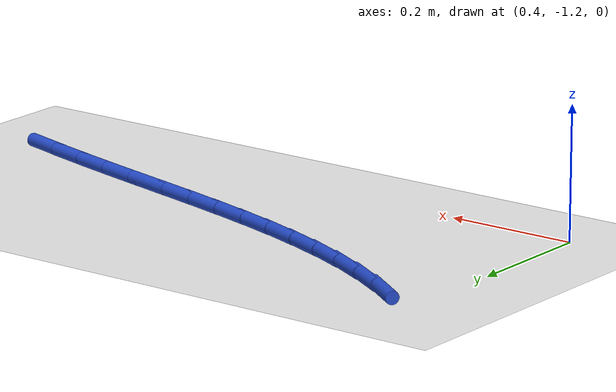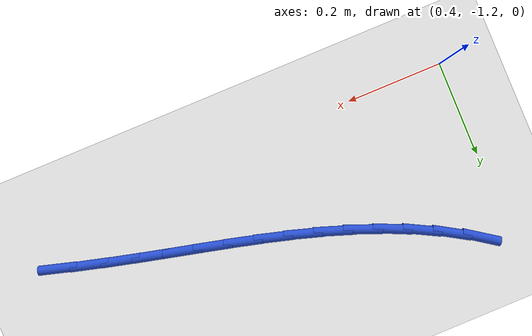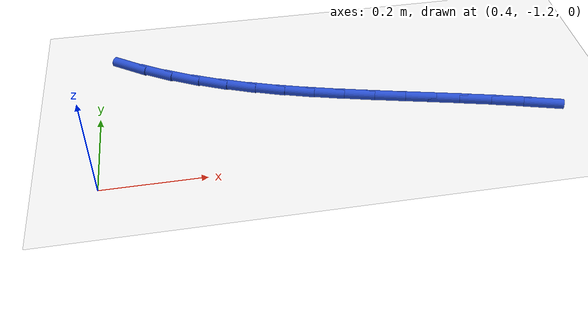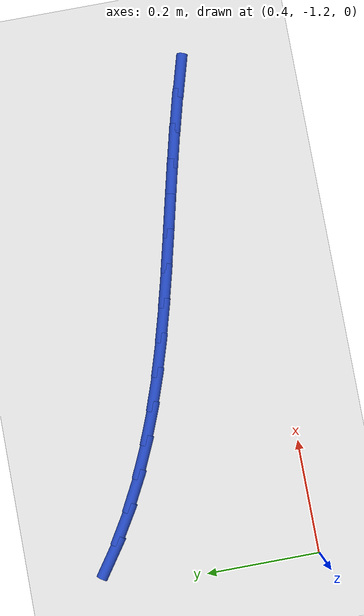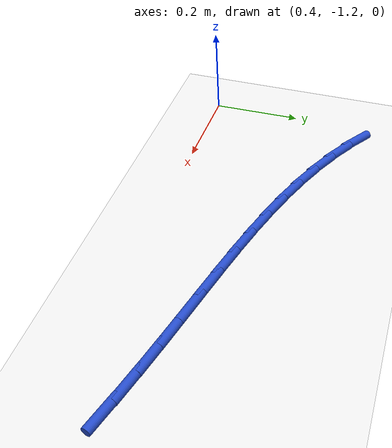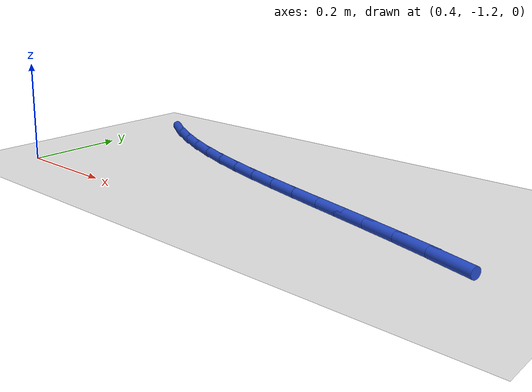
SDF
<sdf version="1.6">
 <world name="default">
  <model name="ground_plane">
   <static>1</static>
   <link name="link">
    <collision name="collision">
     <geometry><plane><normal>0 0 1</normal><size>100 100</size></plane></geometry>
     <surface><friction><ode><mu>100</mu><mu2>50</mu2></ode></friction></surface>
    </collision>
    <visual name="visual">
     <cast_shadows>0</cast_shadows>
     <geometry><plane><normal>0 0 1</normal><size>100 100</size></plane></geometry>
     <material>
      <script><uri>file://media/materials/scripts/gazebo.material</uri><name>Gazebo/WhiteGlow</name></script>
     </material>
    </visual>
   </link>
  </model>
  <model name="line">
   <link name="link_90">
    <pose>1.27815110109412 -1.1131284801190258 0.01 0 1.57 -0.27883157748176374</pose>
    <collision name="collision">
     <geometry><cylinder><radius>0.01</radius><length>0.08</length></cylinder></geometry>
    </collision>
    <visual name="visual">
     <material>
      <script><name>Gazebo/Blue</name><uri>file://media/materials/scripts/gazebo.material</uri></script>
     </material>
     <geometry><cylinder><radius>0.01</radius><length>0.08</length></cylinder></geometry>
    </visual>
   </link>
   <link name="link_91">
    <pose>1.216161551930985 -1.0953815098420938 0.01 0 1.57 -0.2585443103683471</pose>
    <collision name="collision">
     <geometry><cylinder><radius>0.01</radius><length>0.08</length></cylinder></geometry>
    </collision>
    <visual name="visual">
     <material>
      <script><name>Gazebo/Blue</name><uri>file://media/materials/scripts/gazebo.material</uri></script>
     </material>
     <geometry><cylinder><radius>0.01</radius><length>0.08</length></cylinder></geometry>
    </visual>
   </link>
   <link name="link_92">
    <pose>1.1543096458623636 -1.07902394206051 0.01 0 1.57 -0.244625452349905</pose>
    <collision name="collision">
     <geometry><cylinder><radius>0.01</radius><length>0.08</length></cylinder></geometry>
    </collision>
    <visual name="visual">
     <material>
      <script><name>Gazebo/Blue</name><uri>file://media/materials/scripts/gazebo.material</uri></script>
     </material>
     <geometry><cylinder><radius>0.01</radius><length>0.08</length></cylinder></geometry>
    </visual>
   </link>
   <link name="link_93">
    <pose>1.0926971797090914 -1.0636439458053006 0.01 0 1.57 -0.2372288643275581</pose>
    <collision name="collision">
     <geometry><cylinder><radius>0.01</radius><length>0.08</length></cylinder></geometry>
    </collision>
    <visual name="visual">
     <material>
      <script><name>Gazebo/Blue</name><uri>file://media/materials/scripts/gazebo.material</uri></script>
     </material>
     <geometry><cylinder><radius>0.01</radius><length>0.08</length></cylinder></geometry>
    </visual>
   </link>
   <link name="link_94">
    <pose>1.031425950292007 -1.0488296901074936 0.01 0 1.57 -0.23650197003550158</pose>
    <collision name="collision">
     <geometry><cylinder><radius>0.01</radius><length>0.08</length></cylinder></geometry>
    </collision>
    <visual name="visual">
     <material>
      <script><name>Gazebo/Blue</name><uri>file://media/materials/scripts/gazebo.material</uri></script>
     </material>
     <geometry><cylinder><radius>0.01</radius><length>0.08</length></cylinder></geometry>
    </visual>
   </link>
   <link name="link_95">
    <pose>0.9705977544319452 -1.0341693439981152 0.01 0 1.57 -0.24259518238177613</pose>
    <collision name="collision">
     <geometry><cylinder><radius>0.01</radius><length>0.08</length></cylinder></geometry>
    </collision>
    <visual name="visual">
     <material>
      <script><name>Gazebo/Blue</name><uri>file://media/materials/scripts/gazebo.material</uri></script>
     </material>
     <geometry><cylinder><radius>0.01</radius><length>0.08</length></cylinder></geometry>
    </visual>
   </link>
   <link name="link_96">
    <pose>0.9103143889497423 -1.0192510765081917 0.01 0 1.57 -0.2556628980449137</pose>
    <collision name="collision">
     <geometry><cylinder><radius>0.01</radius><length>0.08</length></cylinder></geometry>
    </collision>
    <visual name="visual">
     <material>
      <script><name>Gazebo/Blue</name><uri>file://media/materials/scripts/gazebo.material</uri></script>
     </material>
     <geometry><cylinder><radius>0.01</radius><length>0.08</length></cylinder></geometry>
    </visual>
   </link>
   <link name="link_97">
    <pose>0.8506776506662364 -1.0036630566687508 0.01 0 1.57 -0.2758546222119745</pose>
    <collision name="collision">
     <geometry><cylinder><radius>0.01</radius><length>0.08</length></cylinder></geometry>
    </collision>
    <visual name="visual">
     <material>
      <script><name>Gazebo/Blue</name><uri>file://media/materials/scripts/gazebo.material</uri></script>
     </material>
     <geometry><cylinder><radius>0.01</radius><length>0.08</length></cylinder></geometry>
    </visual>
   </link>
   <link name="link_98">
    <pose>0.7917893364022632 -0.986993453510819 0.01 0 1.57 -0.30329471917933365</pose>
    <collision name="collision">
     <geometry><cylinder><radius>0.01</radius><length>0.08</length></cylinder></geometry>
    </collision>
    <visual name="visual">
     <material>
      <script><name>Gazebo/Blue</name><uri>file://media/materials/scripts/gazebo.material</uri></script>
     </material>
     <geometry><cylinder><radius>0.01</radius><length>0.08</length></cylinder></geometry>
    </visual>
   </link>
   <link name="link_99">
    <pose>0.7337512429786597 -0.9688304360654232 0.01 0 1.57 -0.3380495842262577</pose>
    <collision name="collision">
     <geometry><cylinder><radius>0.01</radius><length>0.08</length></cylinder></geometry>
    </collision>
    <visual name="visual">
     <material>
      <script><name>Gazebo/Blue</name><uri>file://media/materials/scripts/gazebo.material</uri></script>
     </material>
     <geometry><cylinder><radius>0.01</radius><length>0.08</length></cylinder></geometry>
    </visual>
   </link>
   <link name="link_100">
    <pose>0.676665167216261 -0.94876217336359 0.01 0 1.57 -0.3800822024453398</pose>
    <collision name="collision">
     <geometry><cylinder><radius>0.01</radius><length>0.08</length></cylinder></geometry>
    </collision>
    <visual name="visual">
     <material>
      <script><name>Gazebo/Blue</name><uri>file://media/materials/scripts/gazebo.material</uri></script>
     </material>
     <geometry><cylinder><radius>0.01</radius><length>0.08</length></cylinder></geometry>
    </visual>
   </link>
   <link name="link_101">
    <pose>0.6206329059359059 -0.9263768344363468 0.01 0 1.57 -0.4291966324349691</pose>
    <collision name="collision">
     <geometry><cylinder><radius>0.01</radius><length>0.08</length></cylinder></geometry>
    </collision>
    <visual name="visual">
     <material>
      <script><name>Gazebo/Blue</name><uri>file://media/materials/scripts/gazebo.material</uri></script>
     </material>
     <geometry><cylinder><radius>0.01</radius><length>0.08</length></cylinder></geometry>
    </visual>
   </link>
   <link name="link_102">
    <pose>0.5657562559584297 -0.9012625883147197 0.01 0 1.57 -0.4849791778529279</pose>
    <collision name="collision">
     <geometry><cylinder><radius>0.01</radius><length>0.08</length></cylinder></geometry>
    </collision>
    <visual name="visual">
     <material>
      <script><name>Gazebo/Blue</name><uri>file://media/materials/scripts/gazebo.material</uri></script>
     </material>
     <geometry><cylinder><radius>0.01</radius><length>0.08</length></cylinder></geometry>
    </visual>
   </link>
   <link name="link_103">
    <pose>0.5121370141046693 -0.8730076040297363 0.01 0 1.57 -0.5462002851927259</pose>
    <collision name="collision">
     <geometry><cylinder><radius>0.01</radius><length>0.08</length></cylinder></geometry>
    </collision>
    <visual name="visual">
     <material>
      <script><name>Gazebo/Blue</name><uri>file://media/materials/scripts/gazebo.material</uri></script>
     </material>
     <geometry><cylinder><radius>0.01</radius><length>0.08</length></cylinder></geometry>
    </visual>
   </link>
   <link name="link_104">
    <pose>0.459889969654705 -0.8412471837462575 0.01 0 1.57 -0.6079217944712508</pose>
    <collision name="collision">
     <geometry><cylinder><radius>0.01</radius><length>0.08</length></cylinder></geometry>
    </collision>
    <visual name="visual">
     <material>
      <script><name>Gazebo/Blue</name><uri>file://media/materials/scripts/gazebo.material</uri></script>
     </material>
     <geometry><cylinder><radius>0.01</radius><length>0.08</length></cylinder></geometry>
    </visual>
   </link>
  </model>
 </world>
</sdf>
